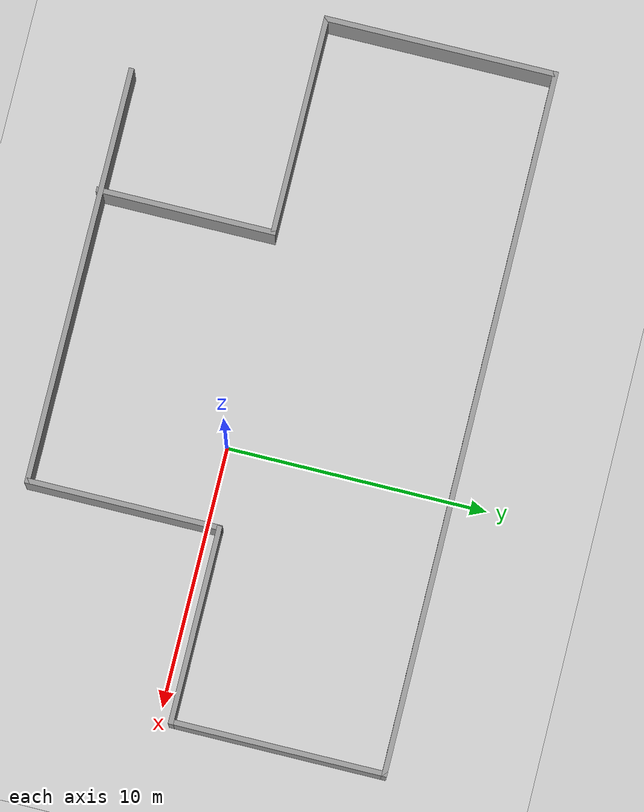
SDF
<?xml version="1.0" ?>
<sdf version='1.4'>
  <world name='default'>
    <model name='ground_plane'>
      <static>1</static>
      <link name='link'>
        <collision name='collision'>
          <geometry>
            <plane>
              <normal>0 0 1</normal>
              <size>100 100</size>
            </plane>
          </geometry>
          <surface>
            <friction>
              <ode>
                <mu>100</mu>
                <mu2>50</mu2>
              </ode>
            </friction>
            <bounce/>
            <contact>
              <ode/>
            </contact>
          </surface>
          <max_contacts>10</max_contacts>
        </collision>
        <visual name='visual'>
          <cast_shadows>0</cast_shadows>
          <geometry>
            <plane>
              <normal>0 0 1</normal>
              <size>100 100</size>
            </plane>
          </geometry>
          <material>
            <script>
              <uri>file://media/materials/scripts/gazebo.material</uri>
              <name>Gazebo/Grey</name>
            </script>
          </material>
        </visual>
        <velocity_decay>
          <linear>0</linear>
          <angular>0</angular>
        </velocity_decay>
        <self_collide>0</self_collide>
        <kinematic>0</kinematic>
        <gravity>1</gravity>
      </link>
    </model>
    <light name='sun' type='directional'>
      <cast_shadows>1</cast_shadows>
      <pose>0 0 10 0 -0 0</pose>
      <diffuse>0.8 0.8 0.8 1</diffuse>
      <specular>0.2 0.2 0.2 1</specular>
      <attenuation>
        <range>1000</range>
        <constant>0.9</constant>
        <linear>0.01</linear>
        <quadratic>0.001</quadratic>
      </attenuation>
      <direction>-0.5 0.1 -0.9</direction>
    </light>
    <physics type='ode'>
      <max_step_size>0.005</max_step_size>
      <real_time_factor>1</real_time_factor>
      <real_time_update_rate>200</real_time_update_rate>
      <gravity>0 0 -9.8</gravity>
    </physics>
    <scene>
      <ambient>0.4 0.4 0.4 1</ambient>
      <background>0.7 0.7 0.7 1</background>
      <shadows>1</shadows>
    </scene>
    <spherical_coordinates>
      <surface_model>EARTH_WGS84</surface_model>
      <latitude_deg>0</latitude_deg>
      <longitude_deg>0</longitude_deg>
      <elevation>0</elevation>
      <heading_deg>0</heading_deg>
    </spherical_coordinates>
    <gui fullscreen='0'>
      <camera name='user_camera'>
        <pose>-2.57767 -2.91132 2.87769 3.10316e-17 0.463643 0.86419</pose>
        <view_controller>orbit</view_controller>
      </camera>
    </gui>

    <include>
      <uri>model://wall2</uri>
    </include>
  </world>
</sdf>

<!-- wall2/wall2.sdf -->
<sdf version='1.4'>
  <model name='wall2'>
    <link name='Wall_11'>
      <collision name='Wall_11_Collision'>
        <geometry>
          <box>
            <size>16.0304 0.2 2.5</size>
          </box>
        </geometry>
        <pose>0 0 1.25 0 -0 0</pose>
      </collision>
      <visual name='Wall_11_Visual'>
        <pose>0 0 1.25 0 -0 0</pose>
        <geometry>
          <box>
            <size>16.0304 0.2 2.5</size>
          </box>
        </geometry>
        <material>
          <script>
            <uri>file://media/materials/scripts/gazebo.material</uri>
            <name>Gazebo/Grey</name>
          </script>
        </material>
      </visual>
      <velocity_decay>
        <linear>0</linear>
        <angular>0</angular>
      </velocity_decay>
      <pose>-4.74075 -6.79278 0 0 -0 0</pose>
    </link>
    <link name='Wall_12'>
      <collision name='Wall_12_Collision'>
        <geometry>
          <box>
            <size>7.51718 0.2 2.5</size>
          </box>
        </geometry>
        <pose>0 0 1.25 0 -0 0</pose>
      </collision>
      <visual name='Wall_12_Visual'>
        <pose>0 0 1.25 0 -0 0</pose>
        <geometry>
          <box>
            <size>7.51718 0.2 2.5</size>
          </box>
        </geometry>
        <material>
          <script>
            <uri>file://media/materials/scripts/gazebo.material</uri>
            <name>Gazebo/Grey</name>
          </script>
        </material>
      </visual>
      <velocity_decay>
        <linear>0</linear>
        <angular>0</angular>
      </velocity_decay>
      <pose>3.17448 -3.13419 0 0 -0 1.5708</pose>
    </link>
    <link name='Wall_13'>
      <collision name='Wall_13_Collision'>
        <geometry>
          <box>
            <size>7.58754 0.2 2.5</size>
          </box>
        </geometry>
        <pose>0 0 1.25 0 -0 0</pose>
      </collision>
      <visual name='Wall_13_Visual'>
        <pose>0 0 1.25 0 -0 0</pose>
        <geometry>
          <box>
            <size>7.58754 0.2 2.5</size>
          </box>
        </geometry>
        <material>
          <script>
            <uri>file://media/materials/scripts/gazebo.material</uri>
            <name>Gazebo/Grey</name>
          </script>
        </material>
      </visual>
      <velocity_decay>
        <linear>0</linear>
        <angular>0</angular>
      </velocity_decay>
      <pose>6.86825 0.5244 0 0 -0 0</pose>
    </link>
    <link name='Wall_14'>
      <collision name='Wall_14_Collision'>
        <geometry>
          <box>
            <size>8.29111 0.2 2.5</size>
          </box>
        </geometry>
        <pose>0 0 1.25 0 -0 0</pose>
      </collision>
      <visual name='Wall_14_Visual'>
        <pose>0 0 1.25 0 -0 0</pose>
        <geometry>
          <box>
            <size>8.29111 0.2 2.5</size>
          </box>
        </geometry>
        <material>
          <script>
            <uri>file://media/materials/scripts/gazebo.material</uri>
            <name>Gazebo/Grey</name>
          </script>
        </material>
      </visual>
      <velocity_decay>
        <linear>0</linear>
        <angular>0</angular>
      </velocity_decay>
      <pose>10.562 4.56996 0 0 -0 1.5708</pose>
    </link>
    <link name='Wall_15'>
      <collision name='Wall_15_Collision'>
        <geometry>
          <box>
            <size>27.0766 0.2 2.5</size>
          </box>
        </geometry>
        <pose>0 0 1.25 0 -0 0</pose>
      </collision>
      <visual name='Wall_15_Visual'>
        <pose>0 0 1.25 0 -0 0</pose>
        <geometry>
          <box>
            <size>27.0766 0.2 2.5</size>
          </box>
        </geometry>
        <material>
          <script>
            <uri>file://media/materials/scripts/gazebo.material</uri>
            <name>Gazebo/Grey</name>
          </script>
        </material>
      </visual>
      <velocity_decay>
        <linear>0</linear>
        <angular>0</angular>
      </velocity_decay>
      <pose>-2.87627 8.61552 0 0 -0 3.14159</pose>
    </link>
    <link name='Wall_16'>
      <collision name='Wall_16_Collision'>
        <geometry>
          <box>
            <size>8.99469 0.2 2.5</size>
          </box>
        </geometry>
        <pose>0 0 1.25 0 -0 0</pose>
      </collision>
      <visual name='Wall_16_Visual'>
        <pose>0 0 1.25 0 -0 0</pose>
        <geometry>
          <box>
            <size>8.99469 0.2 2.5</size>
          </box>
        </geometry>
        <material>
          <script>
            <uri>file://media/materials/scripts/gazebo.material</uri>
            <name>Gazebo/Grey</name>
          </script>
        </material>
      </visual>
      <velocity_decay>
        <linear>0</linear>
        <angular>0</angular>
      </velocity_decay>
      <pose>-16.3146 4.21817 0 0 0 -1.5708</pose>
    </link>
    <link name='Wall_17'>
      <collision name='Wall_17_Collision'>
        <geometry>
          <box>
            <size>8.50219 0.2 2.5</size>
          </box>
        </geometry>
        <pose>0 0 1.25 0 -0 0</pose>
      </collision>
      <visual name='Wall_17_Visual'>
        <pose>0 0 1.25 0 -0 0</pose>
        <geometry>
          <box>
            <size>8.50219 0.2 2.5</size>
          </box>
        </geometry>
        <material>
          <script>
            <uri>file://media/materials/scripts/gazebo.material</uri>
            <name>Gazebo/Grey</name>
          </script>
        </material>
      </visual>
      <velocity_decay>
        <linear>0</linear>
        <angular>0</angular>
      </velocity_decay>
      <pose>-12.1635 -0.179175 0 0 -0 0</pose>
    </link>
    <link name='Wall_18'>
      <collision name='Wall_18_Collision'>
        <geometry>
          <box>
            <size>6.88396 0.2 2.5</size>
          </box>
        </geometry>
        <pose>0 0 1.25 0 -0 0</pose>
      </collision>
      <visual name='Wall_18_Visual'>
        <pose>0 0 1.25 0 -0 0</pose>
        <geometry>
          <box>
            <size>6.88396 0.2 2.5</size>
          </box>
        </geometry>
        <material>
          <script>
            <uri>file://media/materials/scripts/gazebo.material</uri>
            <name>Gazebo/Grey</name>
          </script>
        </material>
      </visual>
      <velocity_decay>
        <linear>0</linear>
        <angular>0</angular>
      </velocity_decay>
      <pose>-8.01237 -3.52116 0 0 0 -1.5708</pose>
    </link>
    <static>1</static>
  </model>
</sdf>
